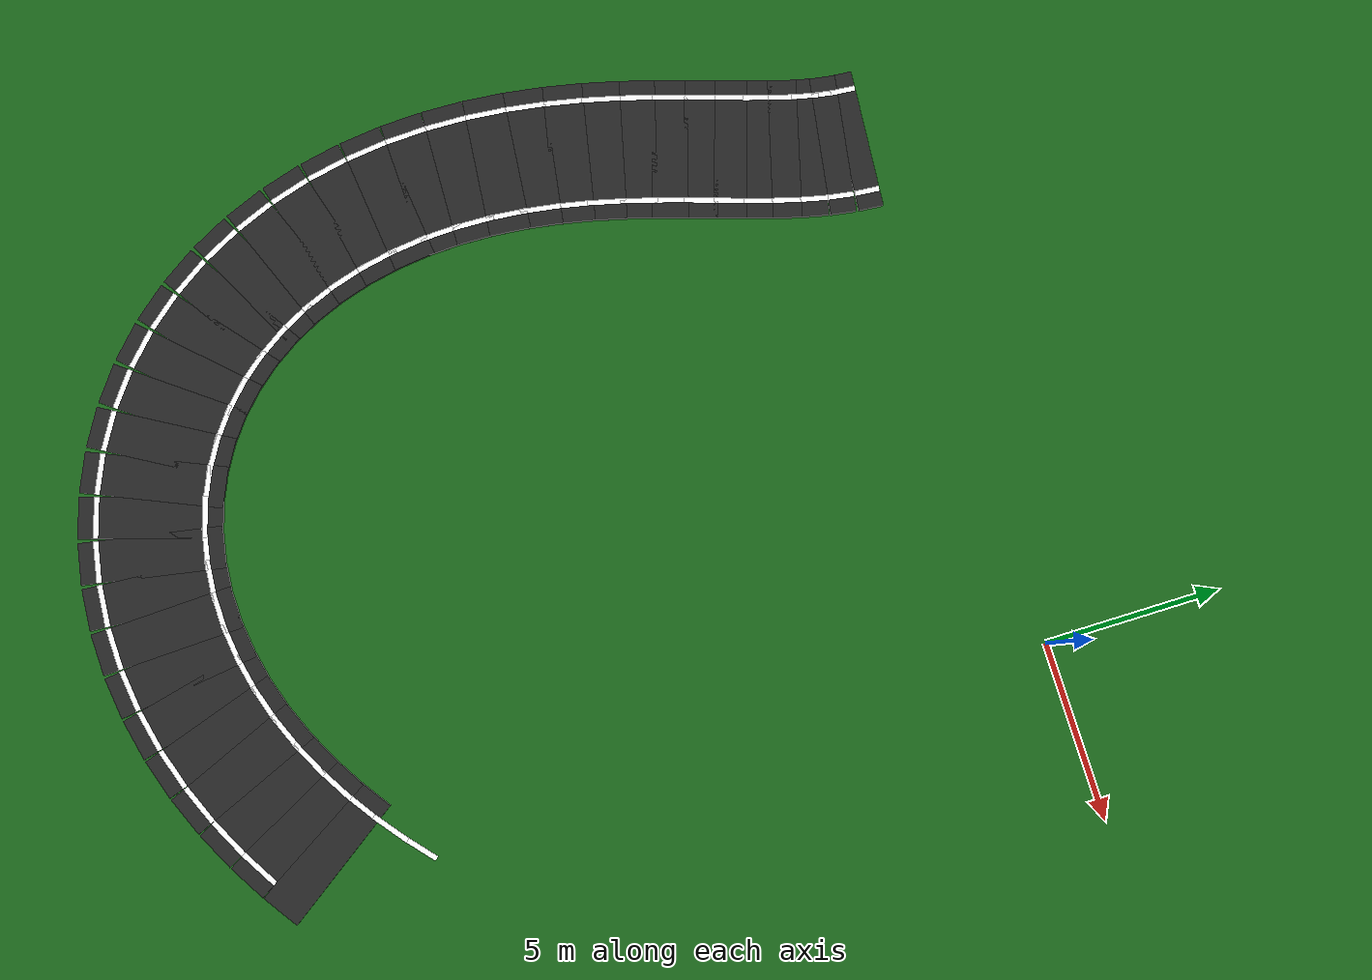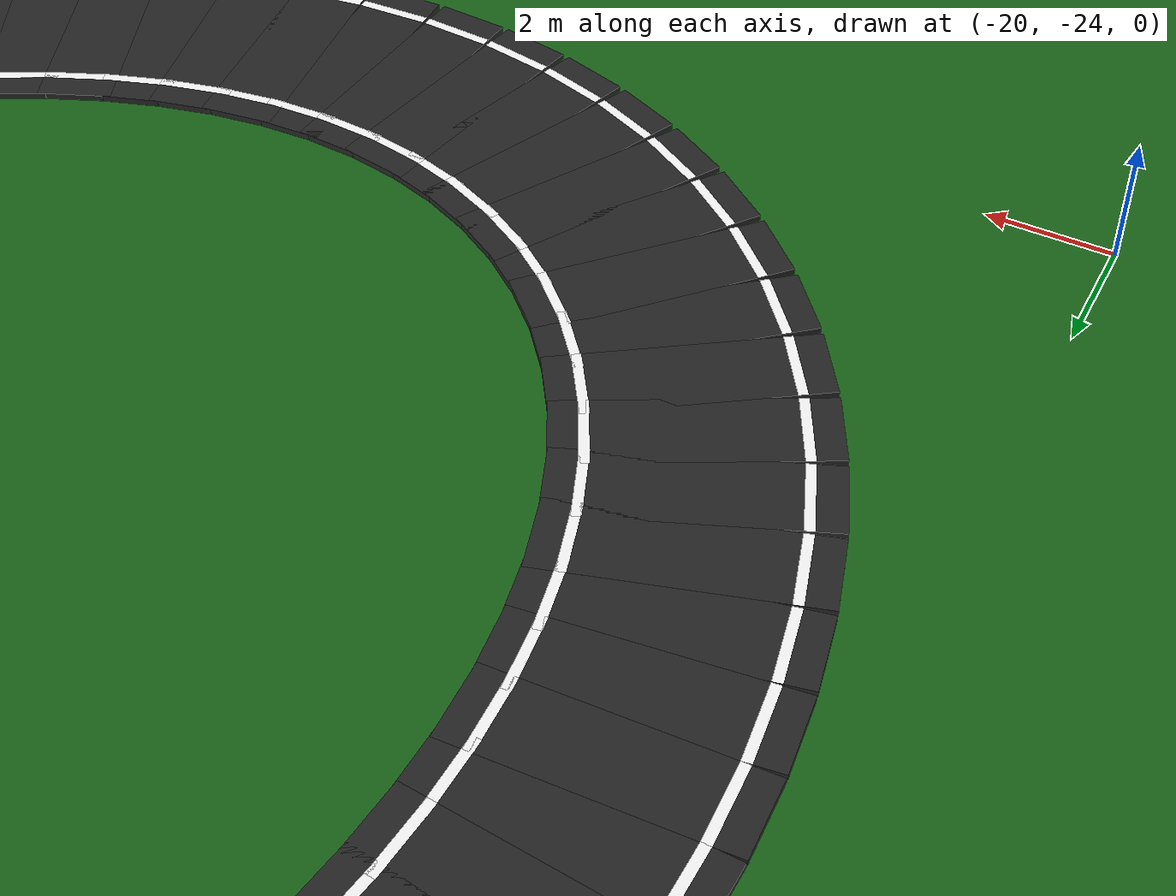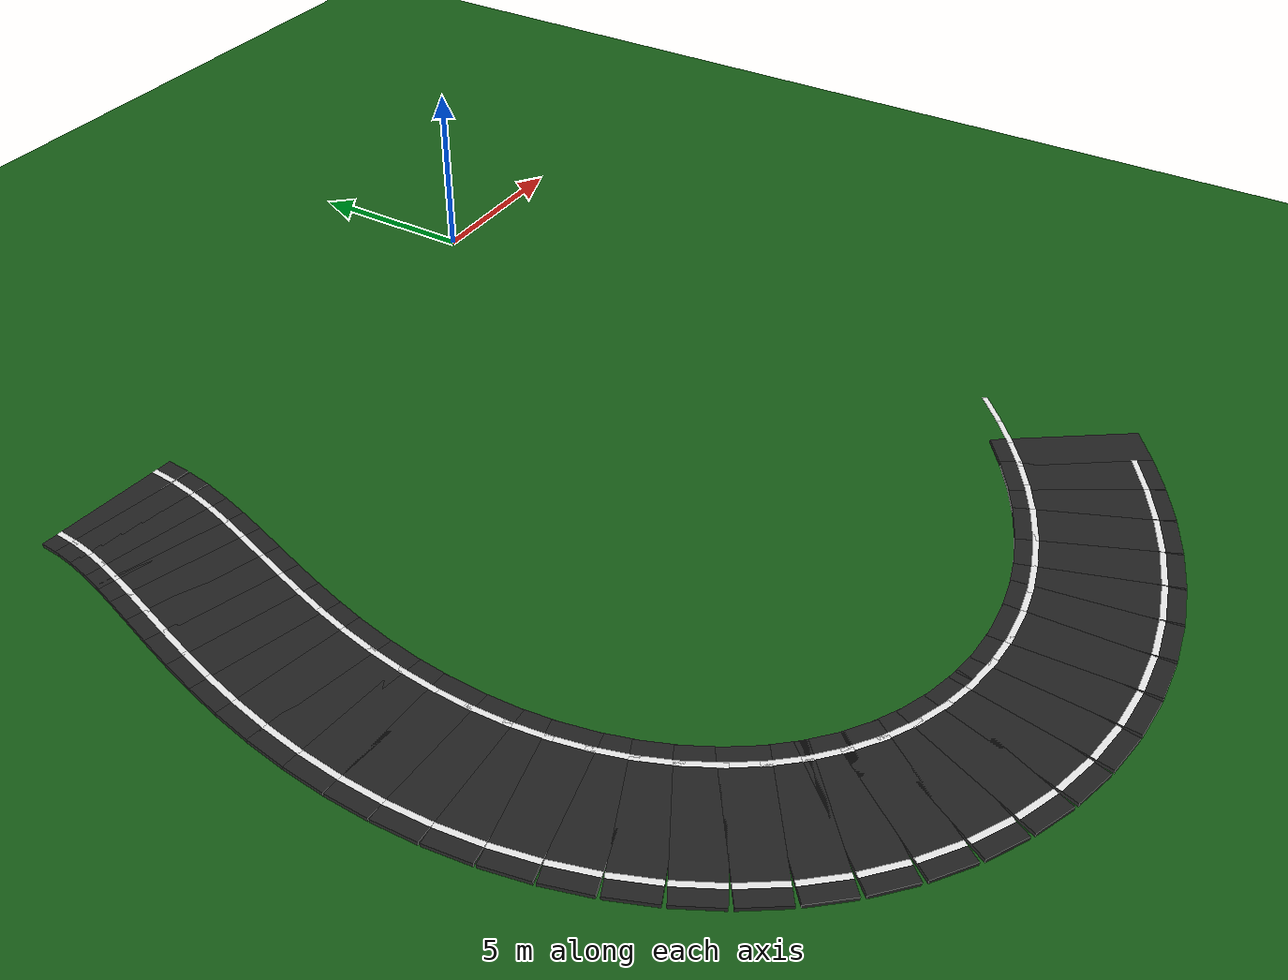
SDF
<sdf version="1.9">
 <world name="curved_race_track">
  <model name="race_track">
   <static>true</static>
   <link name="grass_plane">
    <visual name="visual">
     <geometry><plane><normal>0 0 1</normal><size>150 150</size></plane></geometry>
     <material><ambient>0.1 0.4 0.1 1.0</ambient><diffuse>0.1 0.4 0.1 1.0</diffuse></material>
    </visual>
   </link>
   <link name="asphalt_76">
    <pose>-15.026234361177144 -0.6297858161245247 0.05 0 0 -1.6532680146733318</pose>
    <visual name="v">
     <geometry><box><size>0.7075590026083243 4.0 0.1</size></box></geometry>
     <material><ambient>0.15 0.15 0.15 1</ambient><diffuse>0.15 0.15 0.15 1</diffuse></material>
    </visual>
    <collision name="c"><geometry><box><size>0.7075590026083243 4.0 0.1</size></box></geometry></collision>
   </link>
   <link name="left_line_76">
    <pose>-13.531332654966164 -0.7533531611939266 0.101 0 0 -1.6532680146733318</pose>
    <visual name="v">
     <geometry><box><size>0.7075590026083243 0.15 0.001</size></box></geometry>
     <material><ambient>1 1 1 1</ambient><emissive>0.3 0.3 0.3 1</emissive></material>
    </visual>
   </link>
   <link name="right_line_76">
    <pose>-16.521136067388124 -0.5062184710551227 0.101 0 0 -1.6532680146733318</pose>
    <visual name="v">
     <geometry><box><size>0.7075590026083243 0.15 0.001</size></box></geometry>
     <material><ambient>1 1 1 1</ambient><emissive>0.3 0.3 0.3 1</emissive></material>
    </visual>
   </link>
   <link name="asphalt_77">
    <pose>-15.10392616672012 -1.2683121165901003 0.05 0 0 -1.7283370552135005</pose>
    <visual name="v">
     <geometry><box><size>0.7344883325544813 4.0 0.1</size></box></geometry>
     <material><ambient>0.15 0.15 0.15 1</ambient><diffuse>0.15 0.15 0.15 1</diffuse></material>
    </visual>
    <collision name="c"><geometry><box><size>0.7344883325544813 4.0 0.1</size></box></geometry></collision>
   </link>
   <link name="left_line_77">
    <pose>-13.622502010215278 -1.503646917509808 0.101 0 0 -1.7283370552135005</pose>
    <visual name="v">
     <geometry><box><size>0.7344883325544813 0.15 0.001</size></box></geometry>
     <material><ambient>1 1 1 1</ambient><emissive>0.3 0.3 0.3 1</emissive></material>
    </visual>
   </link>
   <link name="right_line_77">
    <pose>-16.58535032322496 -1.0329773156703927 0.101 0 0 -1.7283370552135005</pose>
    <visual name="v">
     <geometry><box><size>0.7344883325544813 0.15 0.001</size></box></geometry>
     <material><ambient>1 1 1 1</ambient><emissive>0.3 0.3 0.3 1</emissive></material>
    </visual>
   </link>
   <link name="asphalt_78">
    <pose>-15.230069423358323 -1.9240052039439346 0.05 0 0 -1.790426707628887</pose>
    <visual name="v">
     <geometry><box><size>0.7716463724455217 4.0 0.1</size></box></geometry>
     <material><ambient>0.15 0.15 0.15 1</ambient><diffuse>0.15 0.15 0.15 1</diffuse></material>
    </visual>
    <collision name="c"><geometry><box><size>0.7716463724455217 4.0 0.1</size></box></geometry></collision>
   </link>
   <link name="left_line_78">
    <pose>-13.766102356582355 -2.250808550614935 0.101 0 0 -1.790426707628887</pose>
    <visual name="v">
     <geometry><box><size>0.7716463724455217 0.15 0.001</size></box></geometry>
     <material><ambient>1 1 1 1</ambient><emissive>0.3 0.3 0.3 1</emissive></material>
    </visual>
   </link>
   <link name="right_line_78">
    <pose>-16.69403649013429 -1.597201857272934 0.101 0 0 -1.790426707628887</pose>
    <visual name="v">
     <geometry><box><size>0.7716463724455217 0.15 0.001</size></box></geometry>
     <material><ambient>1 1 1 1</ambient><emissive>0.3 0.3 0.3 1</emissive></material>
    </visual>
   </link>
   <link name="asphalt_79">
    <pose>-15.399746172501793 -2.604672100472722 0.05 0 0 -1.8365906790637114</pose>
    <visual name="v">
     <geometry><box><size>0.8160515710137829 4.0 0.1</size></box></geometry>
     <material><ambient>0.15 0.15 0.15 1</ambient><diffuse>0.15 0.15 0.15 1</diffuse></material>
    </visual>
    <collision name="c"><geometry><box><size>0.8160515710137829 4.0 0.1</size></box></geometry></collision>
   </link>
   <link name="left_line_79">
    <pose>-13.95241995020581 -2.9986858137549355 0.101 0 0 -1.8365906790637114</pose>
    <visual name="v">
     <geometry><box><size>0.8160515710137829 0.15 0.001</size></box></geometry>
     <material><ambient>1 1 1 1</ambient><emissive>0.3 0.3 0.3 1</emissive></material>
    </visual>
   </link>
   <link name="right_line_79">
    <pose>-16.847072394797777 -2.2106583871905086 0.101 0 0 -1.8365906790637114</pose>
    <visual name="v">
     <geometry><box><size>0.8160515710137829 0.15 0.001</size></box></geometry>
     <material><ambient>1 1 1 1</ambient><emissive>0.3 0.3 0.3 1</emissive></material>
    </visual>
   </link>
   <link name="asphalt_80">
    <pose>-15.606261854672464 -3.317213360351197 0.05 0 0 -1.8661984497617832</pose>
    <visual name="v">
     <geometry><box><size>0.8647287213030012 4.0 0.1</size></box></geometry>
     <material><ambient>0.15 0.15 0.15 1</ambient><diffuse>0.15 0.15 0.15 1</diffuse></material>
    </visual>
    <collision name="c"><geometry><box><size>0.8647287213030012 4.0 0.1</size></box></geometry></collision>
   </link>
   <link name="left_line_80">
    <pose>-14.171234126981147 -3.7539002284352945 0.101 0 0 -1.8661984497617832</pose>
    <visual name="v">
     <geometry><box><size>0.8647287213030012 0.15 0.001</size></box></geometry>
     <material><ambient>1 1 1 1</ambient><emissive>0.3 0.3 0.3 1</emissive></material>
    </visual>
   </link>
   <link name="right_line_80">
    <pose>-17.04128958236378 -2.8805264922670997 0.101 0 0 -1.8661984497617832</pose>
    <visual name="v">
     <geometry><box><size>0.8647287213030012 0.15 0.001</size></box></geometry>
     <material><ambient>1 1 1 1</ambient><emissive>0.3 0.3 0.3 1</emissive></material>
    </visual>
   </link>
   <link name="asphalt_81">
    <pose>-15.841329535015472 -4.06736211479635 0.05 0 0 -1.8800984375799175</pose>
    <visual name="v">
     <geometry><box><size>0.9149951303041044 4.0 0.1</size></box></geometry>
     <material><ambient>0.15 0.15 0.15 1</ambient><diffuse>0.15 0.15 0.15 1</diffuse></material>
    </visual>
    <collision name="c"><geometry><box><size>0.9149951303041044 4.0 0.1</size></box></geometry></collision>
   </link>
   <link name="left_line_81">
    <pose>-14.412510182389434 -4.523953023117258 0.101 0 0 -1.8800984375799175</pose>
    <visual name="v">
     <geometry><box><size>0.9149951303041044 0.15 0.001</size></box></geometry>
     <material><ambient>1 1 1 1</ambient><emissive>0.3 0.3 0.3 1</emissive></material>
    </visual>
   </link>
   <link name="right_line_81">
    <pose>-17.270148887641508 -3.6107712064754427 0.101 0 0 -1.8800984375799175</pose>
    <visual name="v">
     <geometry><box><size>0.9149951303041044 0.15 0.001</size></box></geometry>
     <material><ambient>1 1 1 1</ambient><emissive>0.3 0.3 0.3 1</emissive></material>
    </visual>
   </link>
   <link name="asphalt_82">
    <pose>-16.095297882735842 -4.8594569330265385 0.05 0 0 -1.879821652223713</pose>
    <visual name="v">
     <geometry><box><size>0.964579854375912 4.0 0.1</size></box></geometry>
     <material><ambient>0.15 0.15 0.15 1</ambient><diffuse>0.15 0.15 0.15 1</diffuse></material>
    </visual>
    <collision name="c"><geometry><box><size>0.964579854375912 4.0 0.1</size></box></geometry></collision>
   </link>
   <link name="left_line_82">
    <pose>-14.66635220716524 -5.315652347589282 0.101 0 0 -1.879821652223713</pose>
    <visual name="v">
     <geometry><box><size>0.964579854375912 0.15 0.001</size></box></geometry>
     <material><ambient>1 1 1 1</ambient><emissive>0.3 0.3 0.3 1</emissive></material>
    </visual>
   </link>
   <link name="right_line_82">
    <pose>-17.524243558306445 -4.403261518463795 0.101 0 0 -1.879821652223713</pose>
    <visual name="v">
     <geometry><box><size>0.964579854375912 0.15 0.001</size></box></geometry>
     <material><ambient>1 1 1 1</ambient><emissive>0.3 0.3 0.3 1</emissive></material>
    </visual>
   </link>
   <link name="asphalt_83">
    <pose>-16.35741658615838 -5.696255128284537 0.05 0 0 -1.8670495501553215</pose>
    <visual name="v">
     <geometry><box><size>1.0116441791364068 4.0 0.1</size></box></geometry>
     <material><ambient>0.15 0.15 0.15 1</ambient><diffuse>0.15 0.15 0.15 1</diffuse></material>
    </visual>
    <collision name="c"><geometry><box><size>1.0116441791364068 4.0 0.1</size></box></geometry></collision>
   </link>
   <link name="left_line_83">
    <pose>-14.922761042534308 -6.134163190723124 0.101 0 0 -1.8670495501553215</pose>
    <visual name="v">
     <geometry><box><size>1.0116441791364068 0.15 0.001</size></box></geometry>
     <material><ambient>1 1 1 1</ambient><emissive>0.3 0.3 0.3 1</emissive></material>
    </visual>
   </link>
   <link name="right_line_83">
    <pose>-17.79207212978245 -5.258347065845949 0.101 0 0 -1.8670495501553215</pose>
    <visual name="v">
     <geometry><box><size>1.0116441791364068 0.15 0.001</size></box></geometry>
     <material><ambient>1 1 1 1</ambient><emissive>0.3 0.3 0.3 1</emissive></material>
    </visual>
   </link>
   <link name="asphalt_84">
    <pose>-16.616131850388214 -6.5787919974446085 0.05 0 0 -1.843333897341973</pose>
    <visual name="v">
     <geometry><box><size>1.0547584072677796 4.0 0.1</size></box></geometry>
     <material><ambient>0.15 0.15 0.15 1</ambient><diffuse>0.15 0.15 0.15 1</diffuse></material>
    </visual>
    <collision name="c"><geometry><box><size>1.0547584072677796 4.0 0.1</size></box></geometry></collision>
   </link>
   <link name="left_line_84">
    <pose>-15.17149543398549 -6.982556315336984 0.101 0 0 -1.843333897341973</pose>
    <visual name="v">
     <geometry><box><size>1.0547584072677796 0.15 0.001</size></box></geometry>
     <material><ambient>1 1 1 1</ambient><emissive>0.3 0.3 0.3 1</emissive></material>
    </visual>
   </link>
   <link name="right_line_84">
    <pose>-18.060768266790937 -6.175027679552233 0.101 0 0 -1.843333897341973</pose>
    <visual name="v">
     <geometry><box><size>1.0547584072677796 0.15 0.001</size></box></geometry>
     <material><ambient>1 1 1 1</ambient><emissive>0.3 0.3 0.3 1</emissive></material>
    </visual>
   </link>
   <link name="asphalt_85">
    <pose>-16.859403795124006 -7.506290186788798 0.05 0 0 -1.8099833826011744</pose>
    <visual name="v">
     <geometry><box><size>1.0928661026759914 4.0 0.1</size></box></geometry>
     <material><ambient>0.15 0.15 0.15 1</ambient><diffuse>0.15 0.15 0.15 1</diffuse></material>
    </visual>
    <collision name="c"><geometry><box><size>1.0928661026759914 4.0 0.1</size></box></geometry></collision>
   </link>
   <link name="left_line_85">
    <pose>-15.402107455874997 -7.8616595433904 0.101 0 0 -1.8099833826011744</pose>
    <visual name="v">
     <geometry><box><size>1.0928661026759914 0.15 0.001</size></box></geometry>
     <material><ambient>1 1 1 1</ambient><emissive>0.3 0.3 0.3 1</emissive></material>
    </visual>
   </link>
   <link name="right_line_85">
    <pose>-18.316700134373015 -7.150920830187196 0.101 0 0 -1.8099833826011744</pose>
    <visual name="v">
     <geometry><box><size>1.0928661026759914 0.15 0.001</size></box></geometry>
     <material><ambient>1 1 1 1</ambient><emissive>0.3 0.3 0.3 1</emissive></material>
    </visual>
   </link>
   <link name="asphalt_86">
    <pose>-17.075036969170487 -8.476121961764898 0.05 0 0 -1.7680407262759246</pose>
    <visual name="v">
     <geometry><box><size>1.1252494421990193 4.0 0.1</size></box></geometry>
     <material><ambient>0.15 0.15 0.15 1</ambient><diffuse>0.15 0.15 0.15 1</diffuse></material>
    </visual>
    <collision name="c"><geometry><box><size>1.1252494421990193 4.0 0.1</size></box></geometry></collision>
   </link>
   <link name="left_line_86">
    <pose>-15.60412150495759 -8.77007382370722 0.101 0 0 -1.7680407262759246</pose>
    <visual name="v">
     <geometry><box><size>1.1252494421990193 0.15 0.001</size></box></geometry>
     <material><ambient>1 1 1 1</ambient><emissive>0.3 0.3 0.3 1</emissive></material>
    </visual>
   </link>
   <link name="right_line_86">
    <pose>-18.545952433383384 -8.182170099822576 0.101 0 0 -1.7680407262759246</pose>
    <visual name="v">
     <geometry><box><size>1.1252494421990193 0.15 0.001</size></box></geometry>
     <material><ambient>1 1 1 1</ambient><emissive>0.3 0.3 0.3 1</emissive></material>
    </visual>
   </link>
   <link name="asphalt_87">
    <pose>-17.251014842342457 -9.483825664624284 0.05 0 0 -1.7183018380032433</pose>
    <visual name="v">
     <geometry><box><size>1.1514998059889099 4.0 0.1</size></box></geometry>
     <material><ambient>0.15 0.15 0.15 1</ambient><diffuse>0.15 0.15 0.15 1</diffuse></material>
    </visual>
    <collision name="c"><geometry><box><size>1.1514998059889099 4.0 0.1</size></box></geometry></collision>
   </link>
   <link name="left_line_87">
    <pose>-15.767303682848128 -9.704282452208602 0.101 0 0 -1.7183018380032433</pose>
    <visual name="v">
     <geometry><box><size>1.1514998059889099 0.15 0.001</size></box></geometry>
     <material><ambient>1 1 1 1</ambient><emissive>0.3 0.3 0.3 1</emissive></material>
    </visual>
   </link>
   <link name="right_line_87">
    <pose>-18.734726001836783 -9.263368877039966 0.101 0 0 -1.7183018380032433</pose>
    <visual name="v">
     <geometry><box><size>1.1514998059889099 0.15 0.001</size></box></geometry>
     <material><ambient>1 1 1 1</ambient><emissive>0.3 0.3 0.3 1</emissive></material>
    </visual>
   </link>
   <link name="asphalt_88">
    <pose>-17.375829034621557 -10.523176112706373 0.05 0 0 -1.6613513307512309</pose>
    <visual name="v">
     <geometry><box><size>1.1714934133066408 4.0 0.1</size></box></geometry>
     <material><ambient>0.15 0.15 0.15 1</ambient><diffuse>0.15 0.15 0.15 1</diffuse></material>
    </visual>
    <collision name="c"><geometry><box><size>1.1714934133066408 4.0 0.1</size></box></geometry></collision>
   </link>
   <link name="left_line_88">
    <pose>-15.881974989612345 -10.658823052257613 0.101 0 0 -1.6613513307512309</pose>
    <visual name="v">
     <geometry><box><size>1.1714934133066408 0.15 0.001</size></box></geometry>
     <material><ambient>1 1 1 1</ambient><emissive>0.3 0.3 0.3 1</emissive></material>
    </visual>
   </link>
   <link name="right_line_88">
    <pose>-18.869683079630768 -10.387529173155134 0.101 0 0 -1.6613513307512309</pose>
    <visual name="v">
     <geometry><box><size>1.1714934133066408 0.15 0.001</size></box></geometry>
     <material><ambient>1 1 1 1</ambient><emissive>0.3 0.3 0.3 1</emissive></material>
    </visual>
   </link>
   <link name="asphalt_89">
    <pose>-17.438794199355144 -11.58630716475613 0.05 0 0 -1.5976027562080282</pose>
    <visual name="v">
     <geometry><box><size>1.1853701260313378 4.0 0.1</size></box></geometry>
     <material><ambient>0.15 0.15 0.15 1</ambient><diffuse>0.15 0.15 0.15 1</diffuse></material>
    </visual>
    <collision name="c"><geometry><box><size>1.1853701260313378 4.0 0.1</size></box></geometry></collision>
   </link>
   <link name="left_line_89">
    <pose>-15.939333105576583 -11.62651199337662 0.101 0 0 -1.5976027562080282</pose>
    <visual name="v">
     <geometry><box><size>1.1853701260313378 0.15 0.001</size></box></geometry>
     <material><ambient>1 1 1 1</ambient><emissive>0.3 0.3 0.3 1</emissive></material>
    </visual>
   </link>
   <link name="right_line_89">
    <pose>-18.938255293133704 -11.54610233613564 0.101 0 0 -1.5976027562080282</pose>
    <visual name="v">
     <geometry><box><size>1.1853701260313378 0.15 0.001</size></box></geometry>
     <material><ambient>1 1 1 1</ambient><emissive>0.3 0.3 0.3 1</emissive></material>
    </visual>
   </link>
   <link name="asphalt_90">
    <pose>-17.430339887498953 -12.66388320585616 0.05 0 0 -1.527339524593897</pose>
    <visual name="v">
     <geometry><box><size>1.1935129791848804 4.0 0.1</size></box></geometry>
     <material><ambient>0.15 0.15 0.15 1</ambient><diffuse>0.15 0.15 0.15 1</diffuse></material>
    </visual>
    <collision name="c"><geometry><box><size>1.1935129791848804 4.0 0.1</size></box></geometry></collision>
   </link>
   <link name="left_line_90">
    <pose>-15.931756034855617 -12.598718517591273 0.101 0 0 -1.527339524593897</pose>
    <visual name="v">
     <geometry><box><size>1.1935129791848804 0.15 0.001</size></box></geometry>
     <material><ambient>1 1 1 1</ambient><emissive>0.3 0.3 0.3 1</emissive></material>
    </visual>
   </link>
   <link name="right_line_90">
    <pose>-18.928923740142288 -12.729047894121049 0.101 0 0 -1.527339524593897</pose>
    <visual name="v">
     <geometry><box><size>1.1935129791848804 0.15 0.001</size></box></geometry>
     <material><ambient>1 1 1 1</ambient><emissive>0.3 0.3 0.3 1</emissive></material>
    </visual>
   </link>
   <link name="asphalt_91">
    <pose>-17.342271371838688 -13.745314914786785 0.05 0 0 -1.4507561984476685</pose>
    <visual name="v">
     <geometry><box><size>1.1965258177164921 4.0 0.1</size></box></geometry>
     <material><ambient>0.15 0.15 0.15 1</ambient><diffuse>0.15 0.15 0.15 1</diffuse></material>
    </visual>
    <collision name="c"><geometry><box><size>1.1965258177164921 4.0 0.1</size></box></geometry></collision>
   </link>
   <link name="left_line_91">
    <pose>-15.853065625036447 -13.565686844343494 0.101 0 0 -1.4507561984476685</pose>
    <visual name="v">
     <geometry><box><size>1.1965258177164921 0.15 0.001</size></box></geometry>
     <material><ambient>1 1 1 1</ambient><emissive>0.3 0.3 0.3 1</emissive></material>
    </visual>
   </link>
   <link name="right_line_91">
    <pose>-18.83147711864093 -13.924942985230077 0.101 0 0 -1.4507561984476685</pose>
    <visual name="v">
     <geometry><box><size>1.1965258177164921 0.15 0.001</size></box></geometry>
     <material><ambient>1 1 1 1</ambient><emissive>0.3 0.3 0.3 1</emissive></material>
    </visual>
   </link>
   <link name="asphalt_92">
    <pose>-17.167992285459267 -14.819013419848385 0.05 0 0 -1.3680013868923881</pose>
    <visual name="v">
     <geometry><box><size>1.1952063372059305 4.0 0.1</size></box></geometry>
     <material><ambient>0.15 0.15 0.15 1</ambient><diffuse>0.15 0.15 0.15 1</diffuse></material>
    </visual>
    <collision name="c"><geometry><box><size>1.1952063372059305 4.0 0.1</size></box></geometry></collision>
   </link>
   <link name="left_line_92">
    <pose>-15.698731062850857 -14.516901752183525 0.101 0 0 -1.3680013868923881</pose>
    <visual name="v">
     <geometry><box><size>1.1952063372059305 0.15 0.001</size></box></geometry>
     <material><ambient>1 1 1 1</ambient><emissive>0.3 0.3 0.3 1</emissive></material>
    </visual>
   </link>
   <link name="right_line_92">
    <pose>-18.637253508067676 -15.121125087513246 0.101 0 0 -1.3680013868923881</pose>
    <visual name="v">
     <geometry><box><size>1.1952063372059305 0.15 0.001</size></box></geometry>
     <material><ambient>1 1 1 1</ambient><emissive>0.3 0.3 0.3 1</emissive></material>
    </visual>
   </link>
   <link name="asphalt_93">
    <pose>-16.902683002891145 -15.872675855733695 0.05 0 0 -1.2792236490667785</pose>
    <visual name="v">
     <geometry><box><size>1.190511819055716 4.0 0.1</size></box></geometry>
     <material><ambient>0.15 0.15 0.15 1</ambient><diffuse>0.15 0.15 0.15 1</diffuse></material>
    </visual>
    <collision name="c"><geometry><box><size>1.190511819055716 4.0 0.1</size></box></geometry></collision>
   </link>
   <link name="left_line_93">
    <pose>-15.465993532916638 -15.441487536243969 0.101 0 0 -1.2792236490667785</pose>
    <visual name="v">
     <geometry><box><size>1.190511819055716 0.15 0.001</size></box></geometry>
     <material><ambient>1 1 1 1</ambient><emissive>0.3 0.3 0.3 1</emissive></material>
    </visual>
   </link>
   <link name="right_line_93">
    <pose>-18.33937247286565 -16.30386417522342 0.101 0 0 -1.2792236490667785</pose>
    <visual name="v">
     <geometry><box><size>1.190511819055716 0.15 0.001</size></box></geometry>
     <material><ambient>1 1 1 1</ambient><emissive>0.3 0.3 0.3 1</emissive></material>
    </visual>
   </link>
   <link name="asphalt_94">
    <pose>-16.543429935222846 -16.893594435666184 0.05 0 0 -1.1846209313870395</pose>
    <visual name="v">
     <geometry><box><size>1.1835150671737222 4.0 0.1</size></box></geometry>
     <material><ambient>0.15 0.15 0.15 1</ambient><diffuse>0.15 0.15 0.15 1</diffuse></material>
    </visual>
    <collision name="c"><geometry><box><size>1.1835150671737222 4.0 0.1</size></box></geometry></collision>
   </link>
   <link name="left_line_94">
    <pose>-15.153895392104376 -16.32862208813 0.101 0 0 -1.1846209313870395</pose>
    <visual name="v">
     <geometry><box><size>1.1835150671737222 0.15 0.001</size></box></geometry>
     <material><ambient>1 1 1 1</ambient><emissive>0.3 0.3 0.3 1</emissive></material>
    </visual>
   </link>
   <link name="right_line_94">
    <pose>-17.932964478341315 -17.458566783202368 0.101 0 0 -1.1846209313870395</pose>
    <visual name="v">
     <geometry><box><size>1.1835150671737222 0.15 0.001</size></box></geometry>
     <material><ambient>1 1 1 1</ambient><emissive>0.3 0.3 0.3 1</emissive></material>
    </visual>
   </link>
   <link name="asphalt_95">
    <pose>-16.089302287180818 -17.86898047501296 0.05 0 0 -1.0844921578126414</pose>
    <visual name="v">
     <geometry><box><size>1.1753487668691371 4.0 0.1</size></box></geometry>
     <material><ambient>0.15 0.15 0.15 1</ambient><diffuse>0.15 0.15 0.15 1</diffuse></material>
    </visual>
    <collision name="c"><geometry><box><size>1.1753487668691371 4.0 0.1</size></box></geometry></collision>
   </link>
   <link name="left_line_95">
    <pose>-14.763203013510829 -17.167937882603677 0.101 0 0 -1.0844921578126414</pose>
    <visual name="v">
     <geometry><box><size>1.1753487668691371 0.15 0.001</size></box></geometry>
     <material><ambient>1 1 1 1</ambient><emissive>0.3 0.3 0.3 1</emissive></material>
    </visual>
   </link>
   <link name="right_line_95">
    <pose>-17.415401560850807 -18.570023067422245 0.101 0 0 -1.0844921578126414</pose>
    <visual name="v">
     <geometry><box><size>1.1753487668691371 0.15 0.001</size></box></geometry>
     <material><ambient>1 1 1 1</ambient><emissive>0.3 0.3 0.3 1</emissive></material>
    </visual>
   </link>
   <link name="asphalt_96">
    <pose>-15.54137429615873 -18.786294364049205 0.05 0 0 -0.9792867830127321</pose>
    <visual name="v">
     <geometry><box><size>1.167138017327685 4.0 0.1</size></box></geometry>
     <material><ambient>0.15 0.15 0.15 1</ambient><diffuse>0.15 0.15 0.15 1</diffuse></material>
    </visual>
    <collision name="c"><geometry><box><size>1.167138017327685 4.0 0.1</size></box></geometry></collision>
   </link>
   <link name="left_line_96">
    <pose>-14.296224474126307 -17.949872269235453 0.101 0 0 -0.9792867830127321</pose>
    <visual name="v">
     <geometry><box><size>1.167138017327685 0.15 0.001</size></box></geometry>
     <material><ambient>1 1 1 1</ambient><emissive>0.3 0.3 0.3 1</emissive></material>
    </visual>
   </link>
   <link name="right_line_96">
    <pose>-16.786524118191153 -19.622716458862957 0.101 0 0 -0.9792867830127321</pose>
    <visual name="v">
     <geometry><box><size>1.167138017327685 0.15 0.001</size></box></geometry>
     <material><ambient>1 1 1 1</ambient><emissive>0.3 0.3 0.3 1</emissive></material>
    </visual>
   </link>
   <link name="asphalt_97">
    <pose>-14.902692499186939 -19.633572300910885 0.05 0 0 -0.8696449412706284</pose>
    <visual name="v">
     <geometry><box><size>1.1599233334616226 4.0 0.1</size></box></geometry>
     <material><ambient>0.15 0.15 0.15 1</ambient><diffuse>0.15 0.15 0.15 1</diffuse></material>
    </visual>
    <collision name="c"><geometry><box><size>1.1599233334616226 4.0 0.1</size></box></geometry></collision>
   </link>
   <link name="left_line_97">
    <pose>-13.756542592850577 -18.665925468536 0.101 0 0 -0.8696449412706284</pose>
    <visual name="v">
     <geometry><box><size>1.1599233334616226 0.15 0.001</size></box></geometry>
     <material><ambient>1 1 1 1</ambient><emissive>0.3 0.3 0.3 1</emissive></material>
    </visual>
   </link>
   <link name="right_line_97">
    <pose>-16.0488424055233 -20.60121913328577 0.101 0 0 -0.8696449412706284</pose>
    <visual name="v">
     <geometry><box><size>1.1599233334616226 0.15 0.001</size></box></geometry>
     <material><ambient>1 1 1 1</ambient><emissive>0.3 0.3 0.3 1</emissive></material>
    </visual>
   </link>
   <link name="asphalt_98">
    <pose>-14.178189111122572 -20.399740666379063 0.05 0 0 -0.7564184862254496</pose>
    <visual name="v">
     <geometry><box><size>1.1545797828012574 4.0 0.1</size></box></geometry>
     <material><ambient>0.15 0.15 0.15 1</ambient><diffuse>0.15 0.15 0.15 1</diffuse></material>
    </visual>
    <collision name="c"><geometry><box><size>1.1545797828012574 4.0 0.1</size></box></geometry></collision>
   </link>
   <link name="left_line_98">
    <pose>-13.148707578080904 -19.308792558939402 0.101 0 0 -0.7564184862254496</pose>
    <visual name="v">
     <geometry><box><size>1.1545797828012574 0.15 0.001</size></box></geometry>
     <material><ambient>1 1 1 1</ambient><emissive>0.3 0.3 0.3 1</emissive></material>
    </visual>
   </link>
   <link name="right_line_98">
    <pose>-15.20767064416424 -21.490688773818725 0.101 0 0 -0.7564184862254496</pose>
    <visual name="v">
     <geometry><box><size>1.1545797828012574 0.15 0.001</size></box></geometry>
     <material><ambient>1 1 1 1</ambient><emissive>0.3 0.3 0.3 1</emissive></material>
    </visual>
   </link>
   <link name="asphalt_99">
    <pose>-13.37454410286433 -21.074909248144827 0.05 0 0 -0.6406634572910471</pose>
    <visual name="v">
     <geometry><box><size>1.151741308694848 4.0 0.1</size></box></geometry>
     <material><ambient>0.15 0.15 0.15 1</ambient><diffuse>0.15 0.15 0.15 1</diffuse></material>
    </visual>
    <collision name="c"><geometry><box><size>1.151741308694848 4.0 0.1</size></box></geometry></collision>
   </link>
   <link name="left_line_99">
    <pose>-12.477952903614403 -19.87236019657663 0.101 0 0 -0.6406634572910471</pose>
    <visual name="v">
     <geometry><box><size>1.151741308694848 0.15 0.001</size></box></geometry>
     <material><ambient>1 1 1 1</ambient><emissive>0.3 0.3 0.3 1</emissive></material>
    </visual>
   </link>
   <link name="right_line_99">
    <pose>-14.271135302114258 -22.277458299713025 0.101 0 0 -0.6406634572910471</pose>
    <visual name="v">
     <geometry><box><size>1.151741308694848 0.15 0.001</size></box></geometry>
     <material><ambient>1 1 1 1</ambient><emissive>0.3 0.3 0.3 1</emissive></material>
    </visual>
   </link>
   <link name="asphalt_100">
    <pose>-12.50000000000001 -21.65063509461096 0.05 0 0 -0.5235987755982997</pose>
    <visual name="v">
     <geometry><box><size>1.1517413086948736 4.0 0.1</size></box></geometry>
     <material><ambient>0.15 0.15 0.15 1</ambient><diffuse>0.15 0.15 0.15 1</diffuse></material>
    </visual>
    <collision name="c"><geometry><box><size>1.1517413086948736 4.0 0.1</size></box></geometry></collision>
   </link>
   <link name="left_line_100">
    <pose>-11.750000000000009 -20.3515969889343 0.101 0 0 -0.5235987755982997</pose>
    <visual name="v">
     <geometry><box><size>1.1517413086948736 0.15 0.001</size></box></geometry>
     <material><ambient>1 1 1 1</ambient><emissive>0.3 0.3 0.3 1</emissive></material>
    </visual>
   </link>
   <link name="right_line_100">
    <pose>-13.250000000000012 -22.949673200287616 0.101 0 0 -0.5235987755982997</pose>
    <visual name="v">
     <geometry><box><size>1.1517413086948736 0.15 0.001</size></box></geometry>
     <material><ambient>1 1 1 1</ambient><emissive>0.3 0.3 0.3 1</emissive></material>
    </visual>
   </link>
   <link name="asphalt_101">
    <pose>-11.564134739912861 -22.120149581188276 0.05 0 0 -0.4065340939055513</pose>
    <visual name="v">
     <geometry><box><size>1.15457978280126 4.0 0.1</size></box></geometry>
     <material><ambient>0.15 0.15 0.15 1</ambient><diffuse>0.15 0.15 0.15 1</diffuse></material>
    </visual>
    <collision name="c"><geometry><box><size>1.15457978280126 4.0 0.1</size></box></geometry></collision>
   </link>
   <link name="left_line_101">
    <pose>-10.970992311582881 -20.742404300044182 0.101 0 0 -0.4065340939055513</pose>
    <visual name="v">
     <geometry><box><size>1.15457978280126 0.15 0.001</size></box></geometry>
     <material><ambient>1 1 1 1</ambient><emissive>0.3 0.3 0.3 1</emissive></material>
    </visual>
   </link>
   <link name="right_line_101">
    <pose>-12.15727716824284 -23.49789486233237 0.101 0 0 -0.4065340939055513</pose>
    <visual name="v">
     <geometry><box><size>1.15457978280126 0.15 0.001</size></box></geometry>
     <material><ambient>1 1 1 1</ambient><emissive>0.3 0.3 0.3 1</emissive></material>
    </visual>
   </link>
   <link name="asphalt_102">
    <pose>-10.577599092137476 -22.478542283081588 0.05 0 0 -0.29077906497114875</pose>
    <visual name="v">
     <geometry><box><size>1.1599233334615973 4.0 0.1</size></box></geometry>
     <material><ambient>0.15 0.15 0.15 1</ambient><diffuse>0.15 0.15 0.15 1</diffuse></material>
    </visual>
    <collision name="c"><geometry><box><size>1.1599233334615973 4.0 0.1</size></box></geometry></collision>
   </link>
   <link name="left_line_102">
    <pose>-10.147551083405007 -21.041511069020725 0.101 0 0 -0.29077906497114875</pose>
    <visual name="v">
     <geometry><box><size>1.1599233334615973 0.15 0.001</size></box></geometry>
     <material><ambient>1 1 1 1</ambient><emissive>0.3 0.3 0.3 1</emissive></material>
    </visual>
   </link>
   <link name="right_line_102">
    <pose>-11.007647100869944 -23.91557349714245 0.101 0 0 -0.29077906497114875</pose>
    <visual name="v">
     <geometry><box><size>1.1599233334615973 0.15 0.001</size></box></geometry>
     <material><ambient>1 1 1 1</ambient><emissive>0.3 0.3 0.3 1</emissive></material>
    </visual>
   </link>
   <link name="asphalt_103">
    <pose>-9.551826130033872 -22.72289643953913 0.05 0 0 -0.1775526099259718</pose>
    <visual name="v">
     <geometry><box><size>1.1671380173277086 4.0 0.1</size></box></geometry>
     <material><ambient>0.15 0.15 0.15 1</ambient><diffuse>0.15 0.15 0.15 1</diffuse></material>
    </visual>
    <collision name="c"><geometry><box><size>1.1671380173277086 4.0 0.1</size></box></geometry></collision>
   </link>
   <link name="left_line_103">
    <pose>-9.286894344473856 -21.246478087919243 0.101 0 0 -0.1775526099259718</pose>
    <visual name="v">
     <geometry><box><size>1.1671380173277086 0.15 0.001</size></box></geometry>
     <material><ambient>1 1 1 1</ambient><emissive>0.3 0.3 0.3 1</emissive></material>
    </visual>
   </link>
   <link name="right_line_103">
    <pose>-9.816757915593888 -24.19931479115902 0.101 0 0 -0.1775526099259718</pose>
    <visual name="v">
     <geometry><box><size>1.1671380173277086 0.15 0.001</size></box></geometry>
     <material><ambient>1 1 1 1</ambient><emissive>0.3 0.3 0.3 1</emissive></material>
    </visual>
   </link>
   <link name="asphalt_104">
    <pose>-8.498721014159672 -22.852372132220562 0.05 0 0 -0.06791076818386536</pose>
    <visual name="v">
     <geometry><box><size>1.1753487668691263 4.0 0.1</size></box></geometry>
     <material><ambient>0.15 0.15 0.15 1</ambient><diffuse>0.15 0.15 0.15 1</diffuse></material>
    </visual>
    <collision name="c"><geometry><box><size>1.1753487668691263 4.0 0.1</size></box></geometry></collision>
   </link>
   <link name="left_line_104">
    <pose>-8.396933142780581 -21.355829707415936 0.101 0 0 -0.06791076818386536</pose>
    <visual name="v">
     <geometry><box><size>1.1753487668691263 0.15 0.001</size></box></geometry>
     <material><ambient>1 1 1 1</ambient><emissive>0.3 0.3 0.3 1</emissive></material>
    </visual>
   </link>
   <link name="right_line_104">
    <pose>-8.600508885538764 -24.34891455702519 0.101 0 0 -0.06791076818386536</pose>
    <visual name="v">
     <geometry><box><size>1.1753487668691263 0.15 0.001</size></box></geometry>
     <material><ambient>1 1 1 1</ambient><emissive>0.3 0.3 0.3 1</emissive></material>
    </visual>
   </link>
   <link name="asphalt_105">
    <pose>-7.430339887498952 -22.868234747372135 0.05 0 0 0.03729460661604278</pose>
    <visual name="v">
     <geometry><box><size>1.183515067173734 4.0 0.1</size></box></geometry>
     <material><ambient>0.15 0.15 0.15 1</ambient><diffuse>0.15 0.15 0.15 1</diffuse></material>
    </visual>
    <collision name="c"><geometry><box><size>1.183515067173734 4.0 0.1</size></box></geometry></collision>
   </link>
   <link name="left_line_105">
    <pose>-7.486268830172605 -21.36927779222919 0.101 0 0 0.03729460661604278</pose>
    <visual name="v">
     <geometry><box><size>1.183515067173734 0.15 0.001</size></box></geometry>
     <material><ambient>1 1 1 1</ambient><emissive>0.3 0.3 0.3 1</emissive></material>
    </visual>
   </link>
   <link name="right_line_105">
    <pose>-7.374410944825298 -24.36719170251508 0.101 0 0 0.03729460661604278</pose>
    <visual name="v">
     <geometry><box><size>1.183515067173734 0.15 0.001</size></box></geometry>
     <material><ambient>1 1 1 1</ambient><emissive>0.3 0.3 0.3 1</emissive></material>
    </visual>
   </link>
   <link name="asphalt_106">
    <pose>-6.358566974906929 -22.773827807464027 0.05 0 0 0.13742338019044129</pose>
    <visual name="v">
     <geometry><box><size>1.1905118190557142 4.0 0.1</size></box></geometry>
     <material><ambient>0.15 0.15 0.15 1</ambient><diffuse>0.15 0.15 0.15 1</diffuse></material>
    </visual>
    <collision name="c"><geometry><box><size>1.1905118190557142 4.0 0.1</size></box></geometry></collision>
   </link>
   <link name="left_line_106">
    <pose>-6.564053841064099 -21.28796941991934 0.101 0 0 0.13742338019044129</pose>
    <visual name="v">
     <geometry><box><size>1.1905118190557142 0.15 0.001</size></box></geometry>
     <material><ambient>1 1 1 1</ambient><emissive>0.3 0.3 0.3 1</emissive></material>
    </visual>
   </link>
   <link name="right_line_106">
    <pose>-6.1530801087497595 -24.259686195008715 0.101 0 0 0.13742338019044129</pose>
    <visual name="v">
     <geometry><box><size>1.1905118190557142 0.15 0.001</size></box></geometry>
     <material><ambient>1 1 1 1</ambient><emissive>0.3 0.3 0.3 1</emissive></material>
    </visual>
   </link>
   <link name="asphalt_107">
    <pose>-5.294799015655712 -22.574490800486018 0.05 0 0 0.23202609787018105</pose>
    <visual name="v">
     <geometry><box><size>1.1952063372059158 4.0 0.1</size></box></geometry>
     <material><ambient>0.15 0.15 0.15 1</ambient><diffuse>0.15 0.15 0.15 1</diffuse></material>
    </visual>
    <collision name="c"><geometry><box><size>1.1952063372059158 4.0 0.1</size></box></geometry></collision>
   </link>
   <link name="left_line_107">
    <pose>-5.639723712149742 -21.11468706239363 0.101 0 0 0.23202609787018105</pose>
    <visual name="v">
     <geometry><box><size>1.1952063372059158 0.15 0.001</size></box></geometry>
     <material><ambient>1 1 1 1</ambient><emissive>0.3 0.3 0.3 1</emissive></material>
    </visual>
   </link>
   <link name="right_line_107">
    <pose>-4.949874319161681 -24.034294538578404 0.101 0 0 0.23202609787018105</pose>
    <visual name="v">
     <geometry><box><size>1.1952063372059158 0.15 0.001</size></box></geometry>
     <material><ambient>1 1 1 1</ambient><emissive>0.3 0.3 0.3 1</emissive></material>
    </visual>
   </link>
   <link name="asphalt_108">
    <pose>-4.249645937881592 -22.277424161107188 0.05 0 0 0.32080383569578946</pose>
    <visual name="v">
     <geometry><box><size>1.1965258177165046 4.0 0.1</size></box></geometry>
     <material><ambient>0.15 0.15 0.15 1</ambient><diffuse>0.15 0.15 0.15 1</diffuse></material>
    </visual>
    <collision name="c"><geometry><box><size>1.1965258177165046 4.0 0.1</size></box></geometry></collision>
   </link>
   <link name="left_line_108">
    <pose>-4.7226401702083445 -20.85395078370049 0.101 0 0 0.32080383569578946</pose>
    <visual name="v">
     <geometry><box><size>1.1965258177165046 0.15 0.001</size></box></geometry>
     <material><ambient>1 1 1 1</ambient><emissive>0.3 0.3 0.3 1</emissive></material>
    </visual>
   </link>
   <link name="right_line_108">
    <pose>-3.77665170555484 -23.700897538513885 0.101 0 0 0.32080383569578946</pose>
    <visual name="v">
     <geometry><box><size>1.1965258177165046 0.15 0.001</size></box></geometry>
     <material><ambient>1 1 1 1</ambient><emissive>0.3 0.3 0.3 1</emissive></material>
    </visual>
   </link>
   <link name="asphalt_109">
    <pose>-3.2326562133031507 -21.891505024729305 0.05 0 0 0.40355864725107043</pose>
    <visual name="v">
     <geometry><box><size>1.193512979184859 4.0 0.1</size></box></geometry>
     <material><ambient>0.15 0.15 0.15 1</ambient><diffuse>0.15 0.15 0.15 1</diffuse></material>
    </visual>
    <collision name="c"><geometry><box><size>1.193512979184859 4.0 0.1</size></box></geometry></collision>
   </link>
   <link name="left_line_109">
    <pose>-3.8216966144676 -20.512000981315143 0.101 0 0 0.40355864725107043</pose>
    <visual name="v">
     <geometry><box><size>1.193512979184859 0.15 0.001</size></box></geometry>
     <material><ambient>1 1 1 1</ambient><emissive>0.3 0.3 0.3 1</emissive></material>
    </visual>
   </link>
   <link name="right_line_109">
    <pose>-2.6436158121387012 -23.271009068143467 0.101 0 0 0.40355864725107043</pose>
    <visual name="v">
     <geometry><box><size>1.193512979184859 0.15 0.001</size></box></geometry>
     <material><ambient>1 1 1 1</ambient><emissive>0.3 0.3 0.3 1</emissive></material>
    </visual>
   </link>
   <link name="asphalt_110">
    <pose>-2.2520746230810986 -21.427058742099373 0.05 0 0 0.4801419733972976</pose>
    <visual name="v">
     <geometry><box><size>1.1853701260313734 4.0 0.1</size></box></geometry>
     <material><ambient>0.15 0.15 0.15 1</ambient><diffuse>0.15 0.15 0.15 1</diffuse></material>
    </visual>
    <collision name="c"><geometry><box><size>1.1853701260313734 4.0 0.1</size></box></geometry></collision>
   </link>
   <link name="left_line_110">
    <pose>-2.9449322739356774 -20.096664711876645 0.101 0 0 0.4801419733972976</pose>
    <visual name="v">
     <geometry><box><size>1.1853701260313734 0.15 0.001</size></box></geometry>
     <material><ambient>1 1 1 1</ambient><emissive>0.3 0.3 0.3 1</emissive></material>
    </visual>
   </link>
   <link name="right_line_110">
    <pose>-1.55921697222652 -22.7574527723221 0.101 0 0 0.4801419733972976</pose>
    <visual name="v">
     <geometry><box><size>1.1853701260313734 0.15 0.001</size></box></geometry>
     <material><ambient>1 1 1 1</ambient><emissive>0.3 0.3 0.3 1</emissive></material>
    </visual>
   </link>
   <link name="asphalt_111">
    <pose>-1.3146392410508807 -20.895592370388325 0.05 0 0 0.5504052050114311</pose>
    <visual name="v">
     <geometry><box><size>1.1714934133066293 4.0 0.1</size></box></geometry>
     <material><ambient>0.15 0.15 0.15 1</ambient><diffuse>0.15 0.15 0.15 1</diffuse></material>
    </visual>
    <collision name="c"><geometry><box><size>1.1714934133066293 4.0 0.1</size></box></geometry></collision>
   </link>
   <link name="left_line_111">
    <pose>-2.099188190880306 -19.617123385499937 0.101 0 0 0.5504052050114311</pose>
    <visual name="v">
     <geometry><box><size>1.1714934133066293 0.15 0.001</size></box></geometry>
     <material><ambient>1 1 1 1</ambient><emissive>0.3 0.3 0.3 1</emissive></material>
    </visual>
   </link>
   <link name="right_line_111">
    <pose>-0.5300902912214551 -22.174061355276713 0.101 0 0 0.5504052050114311</pose>
    <visual name="v">
     <geometry><box><size>1.1714934133066293 0.15 0.001</size></box></geometry>
     <material><ambient>1 1 1 1</ambient><emissive>0.3 0.3 0.3 1</emissive></material>
    </visual>
   </link>
   <link name="asphalt_112">
    <pose>-0.42542332479051936 -20.30949741215069 0.05 0 0 0.614153779554633</pose>
    <visual name="v">
     <geometry><box><size>1.1514998059888797 4.0 0.1</size></box></geometry>
     <material><ambient>0.15 0.15 0.15 1</ambient><diffuse>0.15 0.15 0.15 1</diffuse></material>
    </visual>
    <collision name="c"><geometry><box><size>1.1514998059888797 4.0 0.1</size></box></geometry></collision>
   </link>
   <link name="left_line_112">
    <pose>-1.2898240428921106 -19.083605329402193 0.101 0 0 0.614153779554633</pose>
    <visual name="v">
     <geometry><box><size>1.1514998059888797 0.15 0.001</size></box></geometry>
     <material><ambient>1 1 1 1</ambient><emissive>0.3 0.3 0.3 1</emissive></material>
    </visual>
   </link>
   <link name="left_line_113">
    <pose>-0.5205032876881489 -18.507026764634738 0.101 0 0 0.6711042868066445</pose>
    <visual name="v">
     <geometry><box><size>1.125249442199038 0.15 0.001</size></box></geometry>
     <material><ambient>1 1 1 1</ambient><emissive>0.3 0.3 0.3 1</emissive></material>
    </visual>
   </link>
   <link name="left_line_114">
    <pose>0.20695402808340657 -17.898602538885953 0.101 0 0 0.7208431750793264</pose>
    <visual name="v">
     <geometry><box><size>1.0928661026760036 0.15 0.001</size></box></geometry>
     <material><ambient>1 1 1 1</ambient><emissive>0.3 0.3 0.3 1</emissive></material>
    </visual>
   </link>
  </model>
 </world>
</sdf>
